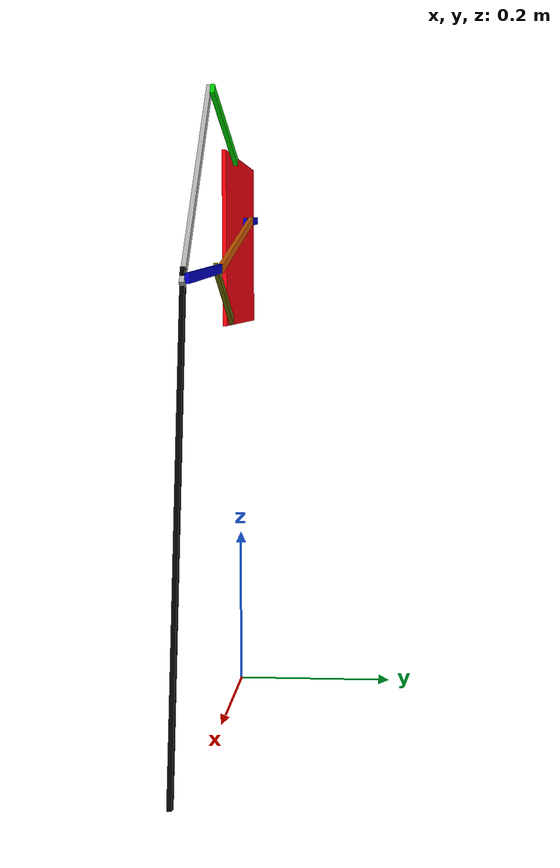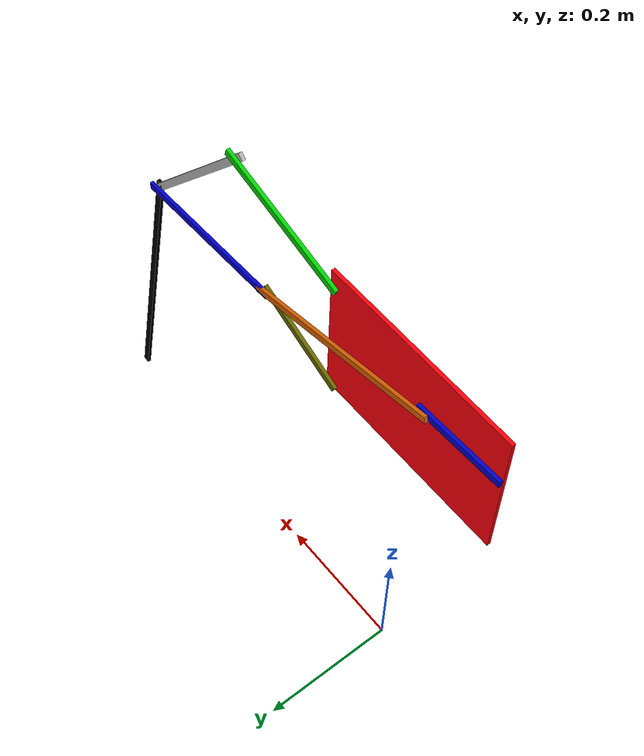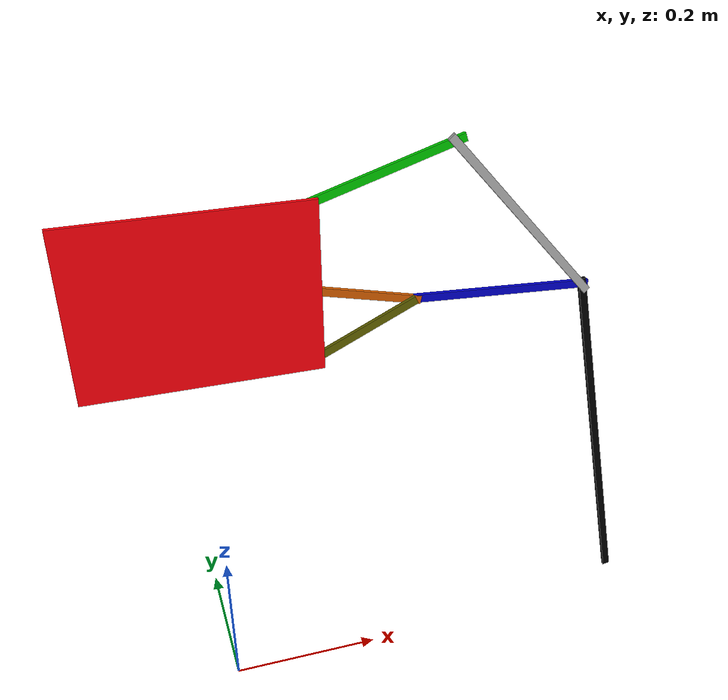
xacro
<?xml version="1.0"?>
<!-- Revolute-Revolute Manipulator -->
<robot name="ptz_camera" xmlns:xacro="http://www.ros.org/wiki/xacro">

  <xacro:property name="mult" value="1" /> <!-- test -->

  <!-- Constants for robot dimensions -->
  <xacro:property name="PI" value="3.1415926535897931"/>
  <xacro:property name="mass" value="${1*mult*mult*mult}" /> <!-- arbitrary value for mass -->
  <xacro:property name="damping" value="0.7" /> <!-- arbitrary value for mass -->

  <xacro:property name="gap_m" value="0.001" /> <!-- Square dimensions (widthxwidth) of beams -->
  <xacro:property name="width_m" value="0.01" /> <!-- Square dimensions (widthxwidth) of beams -->
  <xacro:property name="thickness_m" value="0.005" /> <!-- Square dimensions (widthxwidth) of beams -->
  <xacro:property name="axel_offset_m" value="0.01" /> <!-- Space btw top of beam and the each joint -->
  <xacro:property name="crank_to_arms_X_m" value="0.26616" /> <!-- Frame joints. Distance from crank joint to horizontal line between roker arms   -->
  <xacro:property name="arm2_to_crankY_m" value="0.130" /> <!-- Frame joints. Distance from second (bottom) roker arm joint to crank joint    -->
  <xacro:property name="arm1_to_crankY_m" value="0.06145" /> <!-- Frame joints. Distance from first (top) roker arm joint to crank joint    -->
  <xacro:property name="connecting_rod_upper_len_m" value="0.288" /> <!-- Connecting_rod joints. Distance between crank and elbow joints -->
  <xacro:property name="connecting_rod_lower_len_m" value="0.222" /> <!-- Connecting_rod joints. Distance between elbow and knee joints -->
  <xacro:property name="crank_len_m" value="0.110" /> <!-- length of crank -->
  <xacro:property name="first_rocket_arm_len_m" value="0.182" /> <!-- Rocket arms. Distance between frame and hip joints -->
  <xacro:property name="leg_upper_len_m" value="0.265" /> <!-- Leg joints. Distance between hip and knee joints -->
  <xacro:property name="leg_lower_len_m" value="0.490" /> <!-- Leg joints. Distance between knee joint and the end of the leg -->

  <xacro:property name="gap" value="${gap_m*mult}" /> <!-- Square dimensions (widthxwidth) of beams -->
  <xacro:property name="width" value="${width_m*mult}" /> <!-- Square dimensions (widthxwidth) of beams -->
  <xacro:property name="thickness" value="${thickness_m*mult}" /> <!-- Square dimensions (widthxwidth) of beams -->
  <xacro:property name="axel_offset" value="${axel_offset_m*mult}" /> <!-- Space btw top of beam and the each joint -->
  <xacro:property name="crank_to_arms_X" value="${crank_to_arms_X_m*mult}" /> <!-- Frame joints. Distance from crank joint to horizontal line between roker arms   -->
  <xacro:property name="arm2_to_crankY" value="${arm2_to_crankY_m*mult}" /> <!-- Frame joints. Distance from second (bottom) roker arm joint to crank joint    -->
  <xacro:property name="arm1_to_crankY" value="${arm1_to_crankY_m*mult}" /> <!-- Frame joints. Distance from first (top) roker arm joint to crank joint    -->
  <xacro:property name="connecting_rod_upper_len" value="${connecting_rod_upper_len_m*mult}" /> <!-- Connecting_rod joints. Distance between crank and elbow joints -->
  <xacro:property name="connecting_rod_lower_len" value="${connecting_rod_lower_len_m*mult}" /> <!-- Connecting_rod joints. Distance between elbow and knee joints -->
  <xacro:property name="crank_len" value="${crank_len_m*mult}" /> <!-- length of crank -->
  <xacro:property name="first_rocket_arm_len" value="${first_rocket_arm_len_m*mult}" /> <!-- Rocket arms. Distance between frame and hip joints -->
  <xacro:property name="leg_upper_len" value="${leg_upper_len_m*mult}" /> <!-- Leg joints. Distance between hip and knee joints -->
  <xacro:property name="leg_lower_len" value="${leg_lower_len_m*mult}" /> <!-- Leg joints. Distance between knee joint and the end of the leg -->

  <xacro:property name="frame_width" value="${crank_to_arms_X}" /> <!-- frame width -->
  <xacro:property name="frame_height" value="${arm1_to_crankY + arm2_to_crankY}" /> <!-- frame height -->

  <xacro:property name="connecting_rod_angle" value="${(1-170/180)*PI}" /> <!-- Elbow angle. Angle between upper and lower parts of rod -->

  <xacro:property name="second_rocket_arm_len" value="${arm2_to_crankY}" /> <!-- Rocket arms. Distance between frame and elbow joints -->

  <xacro:property name="leg_angle" value="${PI*(150/180)}" /> <!-- Knee angle. Angle between upper and lower parts of the leg -->

  <!-- Import all Gazebo-customization elements, including Gazebo colors -->
  <xacro:include filename="$(find ptz_camera_description)/urdf/ptz_camera.gazebo" />
  <!-- Import Rviz colors -->
  <xacro:include filename="$(find ptz_camera_description)/urdf/materials.xacro" />

  <!-- Used for fixing robot to Gazebo 'base_link' -->
  <link name="world"/>

  <joint name="fixed" type="fixed">
    <parent link="world"/>
    <child link="frame"/>
    <origin xyz="0 0 ${leg_lower_len}" rpy="0 0 0"/>

  </joint>

  <!-- Base Link -->
  <link name="frame">
    <visual>
      <origin xyz="0 0 ${frame_height/2}" rpy="0 0 0"/>
      <geometry>
	<box size="${frame_width+2*axel_offset} ${thickness} ${frame_height+2*axel_offset}"/>
      </geometry>
        <material name="">
          <color rgba="255 0 10 1.0"/>
        </material>
    </visual>

    <collision>
      <origin xyz="0 0 ${frame_height/2}" rpy="0 0 0"/>
      <geometry>
	<box size="${frame_width+2*axel_offset} ${thickness} ${frame_height+2*axel_offset}"/>
      </geometry>
    </collision>

    <inertial>
      <origin xyz="0 0 ${frame_height/2}" rpy="0 0 0"/>
      <mass value="${mass}"/>
      <inertia
	  ixx="${mass / 12.0 * (thickness*thickness + (frame_height+2*axel_offset)*(frame_height+2*axel_offset))}" ixy="0.0" ixz="0.0"
	  iyy="${mass / 12.0 * ((frame_height+2*axel_offset)*(frame_height+2*axel_offset) + (frame_width+2*axel_offset)*(frame_width+2*axel_offset))}" iyz="0.0"
	  izz="${mass / 12.0 * ((frame_width+2*axel_offset)*(frame_width+2*axel_offset) + thickness*thickness)}"/>
    </inertial>
  </link>

  <!-- crank -->

  <joint name="crank_joint" type="continuous">
    <parent link="frame"/>
    <child link="crank"/>
    <origin xyz="${-crank_to_arms_X/2} ${thickness+gap} ${arm2_to_crankY}" rpy="0 1.63 0"/>
    <axis xyz="0 1 0"/>
    <dynamics damping="${damping}"/>
  </joint>

  <link name="crank">
    <visual>
      <origin xyz="0 0 ${crank_len/2}" rpy="0 0 0"/>
      <geometry>
	<box size="${width} ${thickness} ${crank_len+2*axel_offset}"/>
      </geometry>
      <material name="blue"/>
    </visual>

    <collision>
      <origin xyz="0 0 ${crank_len/2}" rpy="0 0 0"/>
      <geometry>
	<box size="${width} ${thickness} ${crank_len+2*axel_offset}"/>
      </geometry>
    </collision>

    <inertial>
      <origin xyz="0 0 ${crank_len/2+2*axel_offset}" rpy="0 0 0"/>
      <mass value="${mass}"/>
      <inertia
	  ixx="${mass / 12.0 * (thickness*thickness + (crank_len+2*axel_offset)*(crank_len+2*axel_offset))}" ixy="0.0" ixz="0.0"
	  iyy="${mass / 12.0 * ((crank_len+2*axel_offset)*(crank_len+2*axel_offset) + width*width)}" iyz="0.0"
	  izz="${mass / 12.0 * (width*width + thickness*thickness)}"/>
    </inertial>
  </link>

<!--first_rocket_arm -->

  <joint name="first_rocket_arm_joint" type="continuous">
    <parent link="frame"/>
    <child link="first_rocket_arm"/>
    <origin xyz="${crank_to_arms_X/2} ${2*thickness+2*gap} ${frame_height}" rpy="0 1.27 0"/>
    <axis xyz="0 1 0"/>
    <dynamics damping="${damping}"/>
  </joint>

  <link name="first_rocket_arm">
    <visual>
      <origin xyz="0 0 ${first_rocket_arm_len/2}" rpy="0 0 0"/>
      <geometry>
	<box size="${width} ${thickness} ${first_rocket_arm_len+2*axel_offset}"/>
      </geometry>
      <material name="green"/>
    </visual>

    <collision>
      <origin xyz="0 0 ${first_rocket_arm_len/2}" rpy="0 0 0"/>
      <geometry>
	<box size="${width} ${thickness} ${first_rocket_arm_len+2*axel_offset}"/>
      </geometry>
    </collision>

    <inertial>
      <origin xyz="0 0 ${first_rocket_arm_len/2}" rpy="0 0 0"/>
      <mass value="${mass}"/>
      <inertia
	  ixx="${mass / 12.0 * (thickness*thickness + (first_rocket_arm_len+2*axel_offset)*(first_rocket_arm_len+2*axel_offset))}" ixy="0.0" ixz="0.0"
	  iyy="${mass / 12.0 * ((first_rocket_arm_len+2*axel_offset)*(first_rocket_arm_len+2*axel_offset) + width*width)}" iyz="0.0"
	  izz="${mass / 12.0 * (width*width + thickness*thickness)}"/>
    </inertial>
  </link>

<!--second_rocket_arm -->

  <joint name="second_rocket_arm_joint" type="continuous">
    <parent link="frame"/>
    <child link="second_rocket_arm"/>
    <origin xyz="${crank_to_arms_X/2} ${thickness+gap} 0" rpy="0 1.13 0"/>
    <axis xyz="0 1 0"/>
    <dynamics damping="${damping}"/>
  </joint>

  <link name="second_rocket_arm">
    <visual>
      <origin xyz="0 0 ${second_rocket_arm_len/2}" rpy="0 0 0"/>
      <geometry>
	<box size="${width} ${thickness} ${second_rocket_arm_len+2*axel_offset}"/>
      </geometry>
        <material name="">
            <color rgba="100 100 0 1.0"/>
        </material>
    </visual>

    <collision>
      <origin xyz="0 0 ${second_rocket_arm_len/2}" rpy="0 0 0"/>
      <geometry>
	<box size="${width} ${thickness} ${second_rocket_arm_len+2*axel_offset}"/>
      </geometry>
    </collision>

    <inertial>
      <origin xyz="0 0 ${second_rocket_arm_len/2}" rpy="0 0 0"/>
      <mass value="${mass}"/>
      <inertia
	  ixx="${mass / 12.0 * (thickness*thickness + (second_rocket_arm_len+2*axel_offset)*(second_rocket_arm_len+2*axel_offset))}" ixy="0.0" ixz="0.0"
	  iyy="${mass / 12.0 * ((second_rocket_arm_len+2*axel_offset)*(second_rocket_arm_len+2*axel_offset) + width*width)}" iyz="0.0"
	  izz="${mass / 12.0 * (width*width + thickness*thickness)}"/>
    </inertial>

  </link>

<!--connecting_rod -->

 <joint name="crank_shaft" type="continuous">
    <parent link="crank"/>
    <child link="connecting_rod_upper"/>
    <origin xyz="0 ${thickness+gap} ${crank_len}" rpy="0 0.17 0"/>
    <axis xyz="0 1 0"/>
    <dynamics damping="${damping}"/>
  </joint>

  <link name="connecting_rod_upper">
    <visual>
      <origin xyz="0 0 ${connecting_rod_upper_len/2}" rpy="0 0 0"/>
      <geometry>
	<box size="${width} ${thickness} ${connecting_rod_upper_len+2*axel_offset}"/>
      </geometry>
    </visual>

    <collision>
      <origin xyz="0 0 ${connecting_rod_upper_len/2}" rpy="0 0 0"/>
      <geometry>
	<box size="${width} ${thickness} ${connecting_rod_upper_len+2*axel_offset}"/>
      </geometry>
    </collision>

    <inertial>
      <origin xyz="0 0 ${connecting_rod_upper_len/2}" rpy="0 0 0"/>
      <mass value="${mass}"/>
      <inertia
	  ixx="${mass / 12.0 * (thickness*thickness + (connecting_rod_upper_len+2*axel_offset)*(connecting_rod_upper_len+2*axel_offset))}" ixy="0.0" ixz="0.0"
	  iyy="${mass / 12.0 * ((connecting_rod_upper_len+2*axel_offset)*(connecting_rod_upper_len+2*axel_offset) + width*width)}" iyz="0.0"
	  izz="${mass / 12.0 * (width*width + thickness*thickness)}"/>
    </inertial>

  </link>

 <joint name="elbow_joint" type="fixed">
    <parent link="connecting_rod_upper"/>
    <child link="connecting_rod_lower"/>
    <origin xyz="0 0 ${connecting_rod_upper_len}" rpy="0 ${-connecting_rod_angle} 0"/>
    <axis xyz="0 1 0"/>
  </joint>

  <link name="connecting_rod_lower">
    <visual>
      <origin xyz="0 0 ${connecting_rod_lower_len/2}" rpy="0 0 0"/>
      <geometry>
	<box size="${width} ${thickness} ${connecting_rod_lower_len+2*axel_offset}"/>
      </geometry>
      <material name="blue"/>
    </visual>

    <collision>
      <origin xyz="0 0 ${connecting_rod_lower_len/2}" rpy="0 0 0"/>
      <geometry>
	<box size="${width} ${thickness} ${connecting_rod_lower_len+2*axel_offset}"/>
      </geometry>
    </collision>

    <inertial>
      <origin xyz="0 0 ${connecting_rod_lower_len/2}" rpy="0 0 0"/>
      <mass value="${mass}"/>
      <inertia
	  ixx="${mass / 12.0 * (thickness*thickness + (connecting_rod_lower_len+2*axel_offset)*(connecting_rod_lower_len+2*axel_offset))}" ixy="0.0" ixz="0.0"
	  iyy="${mass / 12.0 * ((connecting_rod_lower_len+2*axel_offset)*(connecting_rod_lower_len+2*axel_offset) + width*width)}" iyz="0.0"
	  izz="${mass / 12.0 * (width*width + thickness*thickness)}"/>
    </inertial>
  </link>

<!--leg -->
 <joint name="knee_joint" type="continuous">
    <parent link="connecting_rod_lower"/>
    <child link="leg_upper"/>
    <origin xyz="0 ${-thickness-gap} ${connecting_rod_lower_len}" rpy="0 -2.35 0"/>
    <axis xyz="0 1 0"/>
    <dynamics damping="${damping}"/>
  </joint>

  <link name="leg_upper">
    <visual>
      <origin xyz="0 0 ${leg_upper_len/2}" rpy="0 0 0"/>
      <geometry>
	<box size="${-width} ${thickness} ${leg_upper_len+2*axel_offset}"/>
      </geometry>
    </visual>

    <collision>
      <origin xyz="0 0 ${leg_upper_len/2}" rpy="0 0 0"/>
      <geometry>
	<box size="${-width} ${thickness} ${leg_upper_len+2*axel_offset}"/>
      </geometry>
    </collision>

    <inertial>
      <origin xyz="0 0 ${leg_upper_len/2}" rpy="0 0 0"/>
      <mass value="${mass}"/>
      <inertia
	  ixx="${mass / 12.0 * (thickness*thickness + (leg_upper_len+2*axel_offset)*(leg_upper_len+2*axel_offset))}" ixy="0.0" ixz="0.0"
	  iyy="${mass / 12.0 * ((leg_upper_len+2*axel_offset)*(leg_upper_len+2*axel_offset) + width*width)}" iyz="0.0"
	  izz="${mass / 12.0 * (width*width + thickness*thickness)}"/>
    </inertial>
  </link>

 <joint name="leg_joint" type="fixed">
    <!--parent link="second_rocket_arm"/-->
    <parent link="leg_upper"/>
    <child link="leg_lower"/>
    <origin xyz="0 0 0" rpy="0 ${-leg_angle} 0"/>
    <axis xyz="0 1 0"/>
  </joint>

  <link name="leg_lower">
    <visual>
      <origin xyz="0 0 ${leg_lower_len/2}" rpy="0 0 0"/>
      <geometry>
	<box size="${width} ${thickness} ${leg_lower_len+2*axel_offset}"/>
      </geometry>
      <material name="black"/>
    </visual>

    <collision>
      <origin xyz="0 0 ${leg_lower_len/2}" rpy="0 0 0"/>
      <geometry>
	<box size="${width} ${thickness} ${leg_lower_len+2*axel_offset}"/>
      </geometry>
    </collision>

    <inertial>
      <origin xyz="0 0 ${leg_lower_len/2}" rpy="0 0 0"/>
      <mass value="${mass}"/>
      <inertia
	  ixx="${mass / 12.0 * (thickness*thickness + (leg_lower_len+2*axel_offset)*leg_lower_len)}" ixy="0.0" ixz="0.0"
	  iyy="${mass / 12.0 * (leg_lower_len*leg_lower_len + width*width)}" iyz="0.0"
	  izz="${mass / 12.0 * (width*width + thickness*thickness)}"/>
    </inertial>
  </link>
  <transmission name="tran1">
    <type>transmission_interface/SimpleTransmission</type>
    <joint name="crank_joint">
      <hardwareInterface>hardware_interface/EffortJointInterface</hardwareInterface>
    </joint>
    <actuator name="motor1">
      <hardwareInterface>hardware_interface/EffortJointInterface</hardwareInterface>
      <mechanicalReduction>1</mechanicalReduction>
    </actuator>
  </transmission>

</robot>

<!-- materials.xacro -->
<robot>

  <material name="black">
    <color rgba="0 0 0 1.0"/>
  </material>

  <material name="blue">
    <color rgba="0 0 204 1.0"/>
  </material>

  <material name="green">
    <color rgba="0 204 0 1.0"/>
  </material>

  <material name="grey">
    <color rgba="51 51 51 1.0"/>
  </material>

  <material name="orange">
    <color rgba="255 108 10 1.0"/>
  </material>

  <material name="brown">
    <color rgba="222 207 195 1.0"/>
  </material>

  <material name="red">
    <color rgba="204 0.0 0.0 1.0"/>
  </material>

  <material name="white">
    <color rgba="255 255 255 1.0"/>
  </material>

</robot>
